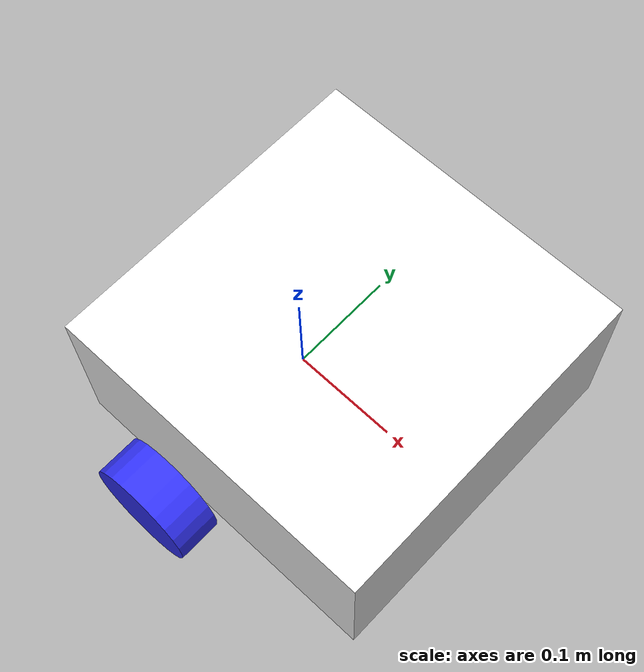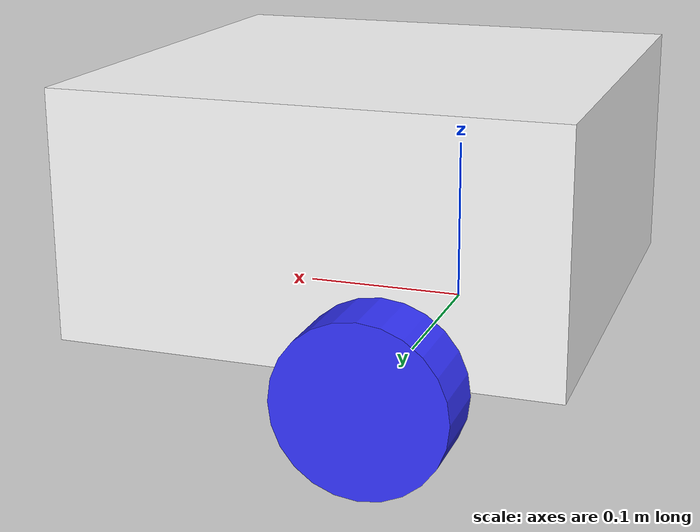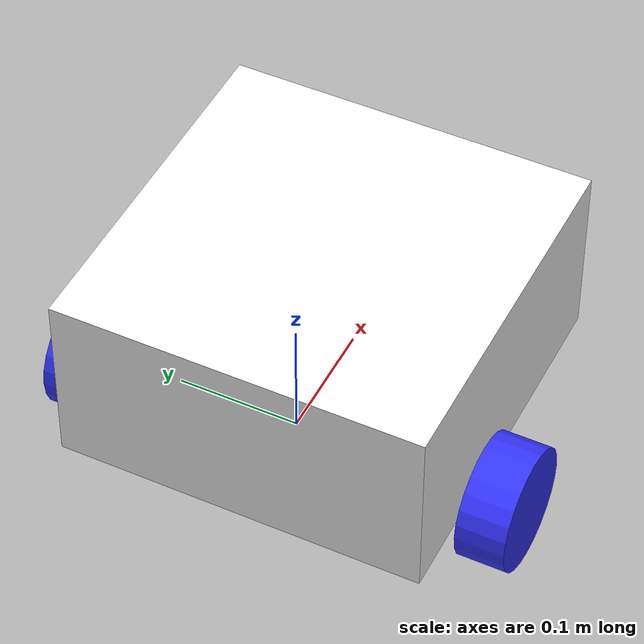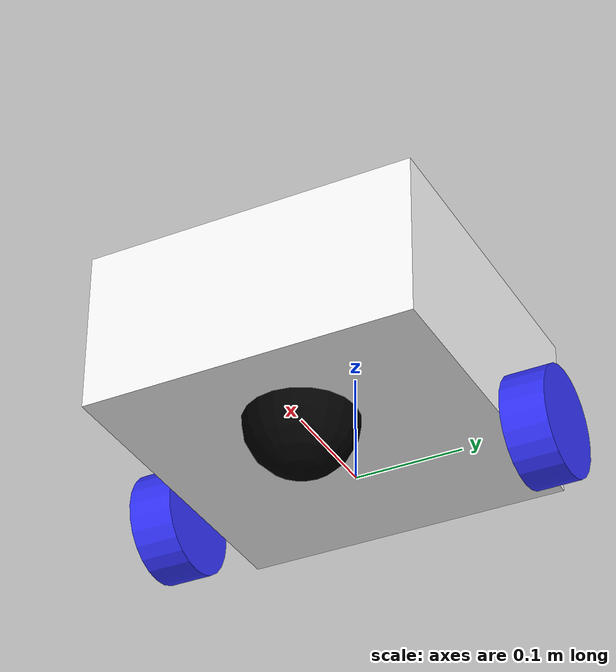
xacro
<?xml version="1.0"?>
<robot xmlns:xacro="http://www.ros.org/wiki/xacro" >

    <xacro:include filename="inertial_macros.xacro"/>

    <material name="white">
        <color rgba="1 1 1 1"/>
    </material>

    <material name="orange">
        <color rgba="1 0.3 0.1 1"/>
    </material>

    <material name="blue">
        <color rgba="0.2 0.2 1 1"/>
    </material>

    <material name="black">
        <color rgba="0 0 0 1"/>
    </material>

    <material name="red">
        <color rgba="1 0 0 1"/>
    </material>

    <!-- Base Link -->
    <link name="base_link">

    </link>

    <!-- Chassis Link -->
    <joint name="chassis_joint" type="fixed">
        <parent link="base_link"/>
        <child link="chassis_link"/>
        <origin xyz="-0.1 0.0 0.0" rpy="0.0 0.0 0.0"/>
    </joint>

    <link name="chassis_link">
        <visual>
            <origin xyz="0.15 0.0 0.075" rpy="0.0 0.0 0.0"/>
            <geometry>
                <box size="0.3 0.3 0.15"/>
            </geometry>
            <material name="white"/>
        </visual>

        <collision>
            <origin xyz="0.15 0.0 0.075" rpy="0.0 0.0 0.0"/>
            <geometry>
                <box size="0.3 0.3 0.15"/>
            </geometry>
        </collision>
        <xacro:inertial_box mass="0.5" x="0.3" y="0.3" z="0.3">
            <origin xyz="0.15 0.0 0.075" rpy="0.0 0.0 0.0"/>
        </xacro:inertial_box>

    </link>

    <gazebo reference="chassis_link">
    <material>Gazebo/White</material>
    </gazebo>

    <!-- Left Wheel Link -->

    <joint name="left_wheel_joint" type="continuous">
        <parent link="base_link"/>
        <child link="left_wheel_link"/>
        <origin xyz="0.0 0.175 0" rpy="-${pi/2} 0.0 0.0"/>
        <axis xyz="0.0 0.0 1"/>
    </joint>

    <link name="left_wheel_link">
        <visual>
            <geometry>
                <cylinder radius="0.05" length="0.04"/>
            </geometry>
            <material name='blue'/>
        </visual>

        <collision>
            <geometry>
                <cylinder radius="0.05" length="0.04"/>
            </geometry>
        </collision>

        <xacro:inertial_cylinder mass="0.1" length="0.04" radius="0.05">
            <origin xyz="0.0 0.0 0.0" rpy="0.0 0.0 0.0"/>
        </xacro:inertial_cylinder>
    </link>

    <gazebo reference="left_wheel_link">
        <material>Gazebo/Blue</material>
    </gazebo>

<!-- Right Wheel Link -->
    <joint name="right_wheel_joint" type="continuous">
        <parent link="base_link"/>
        <child link="right_wheel_link"/>
        <origin xyz="0.0 -0.175 0" rpy="${pi/2} 0.0 0.0"/>
        <axis xyz="0.0 0.0 -1"/>
    </joint>

    <link name="right_wheel_link">
        <visual>
            <geometry>
                <cylinder radius="0.05" length="0.04"/>
            </geometry>
            <material name='blue'/>
        </visual>

        <collision>
            <geometry>
                <cylinder radius="0.05" length="0.04"/>
            </geometry>
        </collision>

        <xacro:inertial_cylinder mass="0.1" length="0.04" radius="0.05">
            <origin xyz="0.0 0.0 0.0" rpy="0.0 0.0 0.0"/>
        </xacro:inertial_cylinder>
    </link>

    <gazebo reference="right_wheel_link">
        <material>Gazebo/Blue</material>
    </gazebo>

<!-- Caster Wheel Link -->

    <joint name="caster_joint" type="fixed">
        <parent link="chassis_link"/>
        <child link="caster_wheel_link"/>
        <origin xyz="0.2 0.0 0.0" rpy="0.0 0.0 0.0"/>
    </joint>

    <link name="caster_wheel_link">
        <visual>
            <geometry>
                <sphere radius="0.05"/>
            </geometry>
            <material name="black"/>
        </visual>

        <collision>
            <geometry>
                <sphere radius="0.05"/>
            </geometry>
        </collision>

        <xacro:inertial_sphere mass="0.1" radius="0.05">
            <origin xyz="0.0 0.0 0.0" rpy="0.0 0.0 0.0"/>
        </xacro:inertial_sphere>
    </link>

    <gazebo reference="caster_wheel_link">
        <material>Gazebo/Black</material>
        <mu1 value="0.001"/>
        <mu2 value="0.001"/>
    </gazebo>

</robot>
